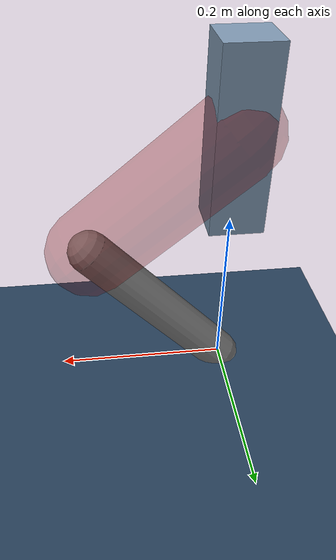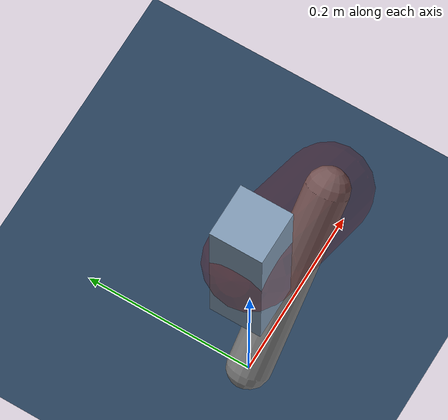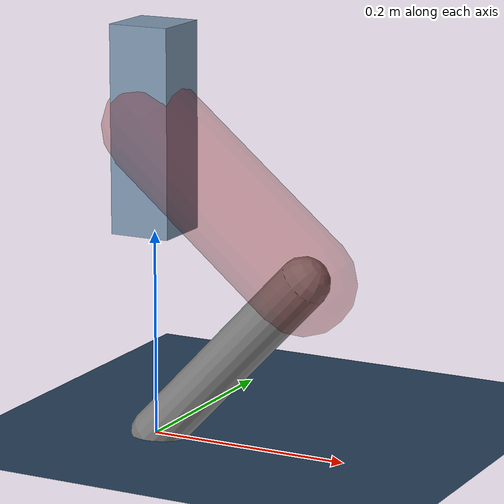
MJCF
<mujoco model="Hopper2D">
	<compiler inertiafromgeom="true" angle="radian" />
	<option timestep="0.001" integrator="implicit" cone="elliptic" solver="Newton" tolerance="1e-10" />

	<default>
		<geom contype="1" conaffinity="1" condim="3" friction="2 0.005 0.0001" solref="0.005 1" />
		<joint limited="true" damping="0.1" />
	</default>

	<asset>
		<texture name="skybox" type="skybox" builtin="gradient" rgb1=".4 .6 .8" rgb2="0 0 0" width="800" height="800" />
		<texture name="grid" type="2d" builtin="checker" rgb1=".1 .2 .3" rgb2=".2 .3 .4" width="300" height="300" mark="edge" markrgb=".2 .3 .4" />
		<material name="ground" texture="grid" texrepeat="1 1" texuniform="true" reflectance="0.1" />
		<material name="leg" rgba="0.5 0.6 0.7 1" />
	</asset>

	<worldbody>

		<geom name="floor" type="plane" size="5 5 0.25" material="ground" />

		<light directional="false" diffuse="0.8 0.8 0.8" specular="0.3 0.3 0.3" pos="0 0 2" dir="0 0 -1" />
		<light mode="targetbodycom" target="base" directional="false" diffuse="0.8 0.8 0.8" specular="0.3 0.3 0.3" pos="0 0 2" dir="0 0 -1" />

		<camera name="fixed" pos="0 -2 1" xyaxes="1 0 0 0 0 1" />
		<camera name="tracking" mode="trackcom" pos="0 -3 1" />

		<body name="root" pos="0 0 0.30070521958511637">
			<joint name="slide_x" type="slide" axis="1 0 0" range="-100 100" />
			<joint name="slide_z" type="slide" axis="0 0 1" range="0 10" />

			<body name="base" pos="0 0 0">
				<geom name="torso" type="box" size="0.03 0.03 0.1" mass="2.904" material="leg" />

				<body name="link1" pos="0 0 0" euler="0 0.6957602481840973 0">
					<joint type="hinge" axis="0 -1 0" pos="0 0 0" name="hinge1" limited="true" range="-3.14 3.14" stiffness="0" damping="0.1" />
					<geom name="thigh" type="capsule" fromto="0 0 0 0.20604230316658317 0 0" size="0.05" rgba="0.5 0 0 0.3" mass="0.744705757916458" />

					<body name="link2" pos="0.20604230316658317 0 0" euler="0 1.628353475488089 0">
						<joint type="hinge" axis="0 -1 0" pos="0 0 0" name="hinge2" limited="true" range="-3.14 3.14" stiffness="0" damping="0.1" />
						<geom name="shank" type="capsule" fromto="0 0 0 0.23119413861648747 0 0" size="0.025" mass="0.42695531089318994" />

					</body>
				</body>
			</body>
		</body>
	</worldbody>

	<actuator>
		<motor name="torque1" joint="hinge1" ctrlrange="-138.12343678651027 138.12343678651027" ctrllimited="true" gear="1" />
		<motor name="torque2" joint="hinge2" ctrlrange="-42.85904890654991 42.85904890654991" ctrllimited="true" gear="1" />
	</actuator>
</mujoco>
